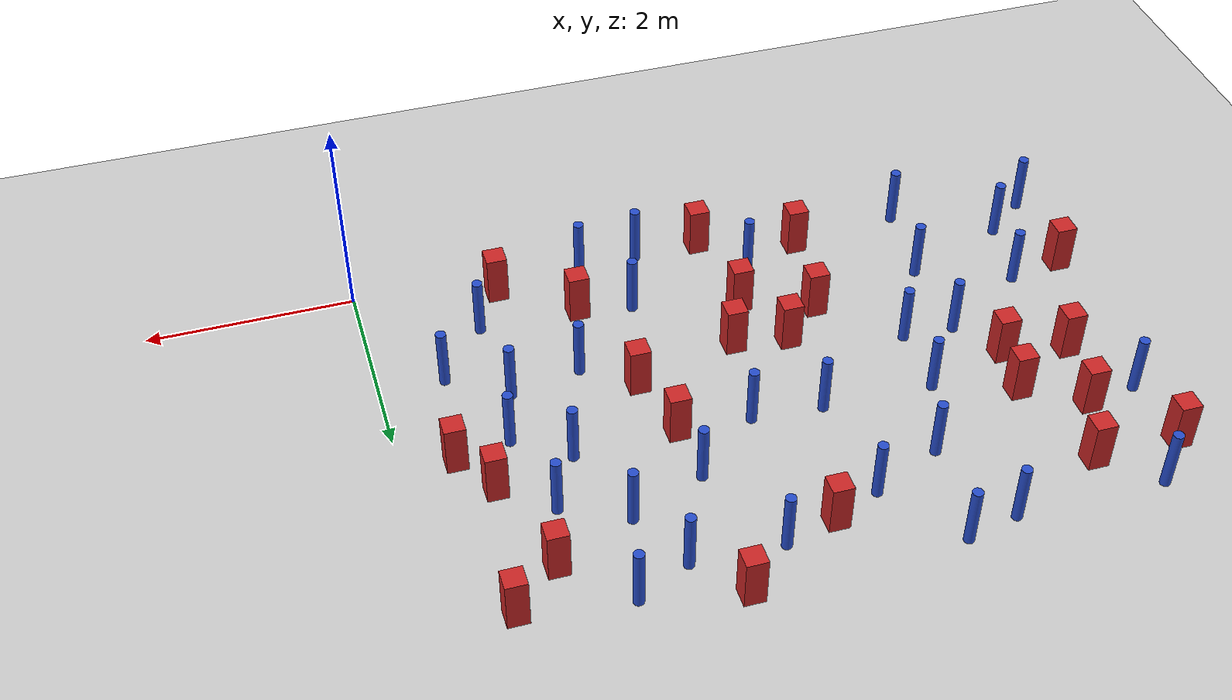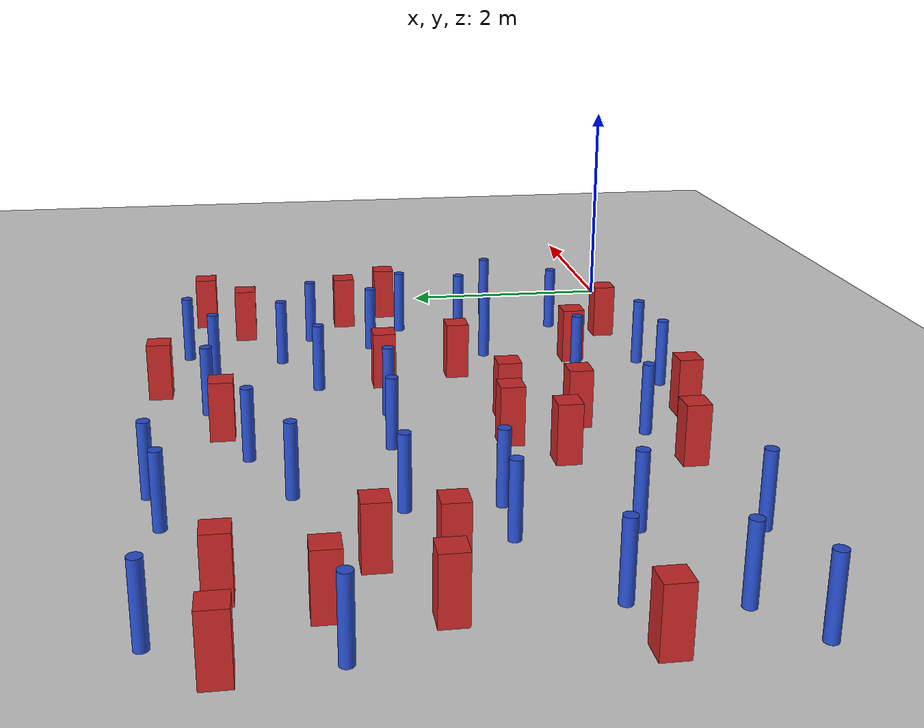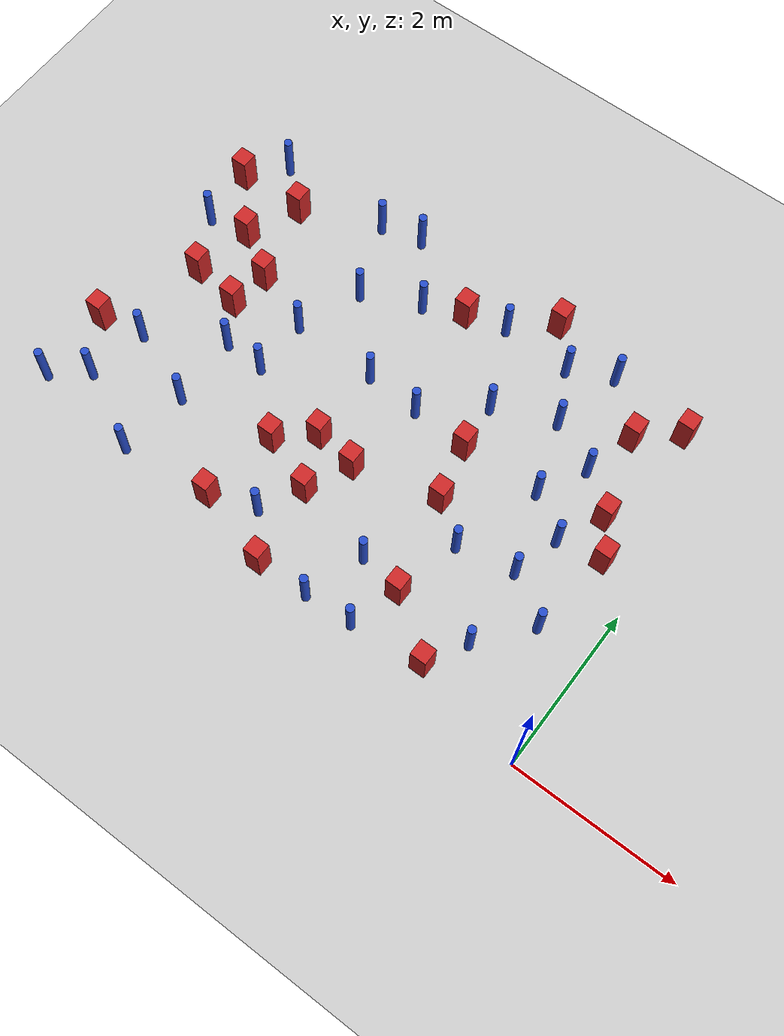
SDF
<sdf version="1.6">
 <world name="default">
  <model name="ground_plane">
   <static>1</static>
   <link name="link">
    <collision name="collision">
     <geometry><plane><normal>0 0 1</normal><size>100 100</size></plane></geometry>
     <surface><friction><ode><mu>100</mu><mu2>50</mu2></ode></friction></surface>
    </collision>
    <visual name="visual">
     <cast_shadows>0</cast_shadows>
     <geometry><plane><normal>0 0 1</normal><size>100 100</size></plane></geometry>
     <material>
      <ambient>1.0 1.0 1.0 1.0</ambient>
      <diffuse>0.8 0.8 0.8 1.0</diffuse>
      <specular>0.01 0.01 0.01 1.000000</specular>
     </material>
    </visual>
   </link>
  </model>
  <model name="pole_obstacle7">
   <static>true</static>
   <pose>-6.87891514637 0.468989120806 2.88873142074e-08 -9.90536689483e-09 4.60219948998e-07 -1.20965994956e-07</pose>
   <link name="link">
    <pose>0 0 0.3 0 -0 0</pose>
    <inertial>
     <mass>1</mass>
     <inertia><ixx>0.145833</ixx><ixy>0</ixy><ixz>0</ixz><iyy>0.145833</iyy><iyz>0</iyz><izz>0.125</izz></inertia>
    </inertial>
    <collision name="collision">
     <geometry><cylinder><radius>0.05</radius><length>.6</length></cylinder></geometry>
    </collision>
    <visual name="visual">
     <geometry><cylinder><radius>0.05</radius><length>.6</length></cylinder></geometry>
     <material>
      <script><name>Gazebo/Blue</name><uri>file://media/materials/scripts/gazebo.material</uri></script>
     </material>
    </visual>
   </link>
  </model>
  <model name="square_post_obstacle17">
   <static>true</static>
   <pose>-3.48001019088 4.02182379612 8.22691968438e-08 7.22125133819e-06 -7.54495500217e-07 2.29674213826e-05</pose>
   <link name="link">
    <pose>0 0 0.25 0 -0 0</pose>
    <inertial>
     <mass>100</mass>
     <inertia>
      <ixx>0.166667</ixx>
      <ixy>0</ixy>
      <ixz>0</ixz>
      <iyy>0.166667</iyy>
      <iyz>0</iyz>
      <izz>0.166667</izz>
     </inertia>
    </inertial>
    <collision name="collision"><geometry><box><size>.2 .2 .5</size></box></geometry></collision>
    <visual name="visual">
     <geometry><box><size>.2 .2 .5</size></box></geometry>
     <material>
      <script><name>Gazebo/Red</name><uri>file://media/materials/scripts/gazebo.material</uri></script>
     </material>
    </visual>
   </link>
  </model>
  <model name="pole_obstacle18">
   <static>true</static>
   <pose>-1.86325711507 1.58406415004 2.88873142074e-08 -9.90536689672e-09 4.60219948993e-07 -1.20965994959e-07</pose>
   <link name="link">
    <pose>0 0 0.3 0 -0 0</pose>
    <inertial>
     <mass>1</mass>
     <inertia><ixx>0.145833</ixx><ixy>0</ixy><ixz>0</ixz><iyy>0.145833</iyy><iyz>0</iyz><izz>0.125</izz></inertia>
    </inertial>
    <collision name="collision">
     <geometry><cylinder><radius>0.05</radius><length>.6</length></cylinder></geometry>
    </collision>
    <visual name="visual">
     <geometry><cylinder><radius>0.05</radius><length>.6</length></cylinder></geometry>
     <material>
      <script><name>Gazebo/Blue</name><uri>file://media/materials/scripts/gazebo.material</uri></script>
     </material>
    </visual>
   </link>
  </model>
  <model name="pole_obstacle33">
   <static>true</static>
   <pose>-1.60469002589 4.37448494918 2.88873142074e-08 -9.90536689852e-09 4.60219948989e-07 -1.2096599496e-07</pose>
   <link name="link">
    <pose>0 0 0.3 0 -0 0</pose>
    <inertial>
     <mass>1</mass>
     <inertia><ixx>0.145833</ixx><ixy>0</ixy><ixz>0</ixz><iyy>0.145833</iyy><iyz>0</iyz><izz>0.125</izz></inertia>
    </inertial>
    <collision name="collision">
     <geometry><cylinder><radius>0.05</radius><length>.6</length></cylinder></geometry>
    </collision>
    <visual name="visual">
     <geometry><cylinder><radius>0.05</radius><length>.6</length></cylinder></geometry>
     <material>
      <script><name>Gazebo/Blue</name><uri>file://media/materials/scripts/gazebo.material</uri></script>
     </material>
    </visual>
   </link>
  </model>
  <model name="pole_obstacle34">
   <static>true</static>
   <pose>-2.54288883217 3.1969439549 2.88873142074e-08 -9.90536690232e-09 4.6021994898e-07 -1.20965994968e-07</pose>
   <link name="link">
    <pose>0 0 0.3 0 -0 0</pose>
    <inertial>
     <mass>1</mass>
     <inertia><ixx>0.145833</ixx><ixy>0</ixy><ixz>0</ixz><iyy>0.145833</iyy><iyz>0</iyz><izz>0.125</izz></inertia>
    </inertial>
    <collision name="collision">
     <geometry><cylinder><radius>0.05</radius><length>.6</length></cylinder></geometry>
    </collision>
    <visual name="visual">
     <geometry><cylinder><radius>0.05</radius><length>.6</length></cylinder></geometry>
     <material>
      <script><name>Gazebo/Blue</name><uri>file://media/materials/scripts/gazebo.material</uri></script>
     </material>
    </visual>
   </link>
  </model>
  <model name="pole_obstacle37">
   <static>true</static>
   <pose>-1.09954351451 0.76246457824 2.88873142074e-08 -9.90536689692e-09 4.60219948993e-07 -1.20965994958e-07</pose>
   <link name="link">
    <pose>0 0 0.3 0 -0 0</pose>
    <inertial>
     <mass>1</mass>
     <inertia><ixx>0.145833</ixx><ixy>0</ixy><ixz>0</ixz><iyy>0.145833</iyy><iyz>0</iyz><izz>0.125</izz></inertia>
    </inertial>
    <collision name="collision">
     <geometry><cylinder><radius>0.05</radius><length>.6</length></cylinder></geometry>
    </collision>
    <visual name="visual">
     <geometry><cylinder><radius>0.05</radius><length>.6</length></cylinder></geometry>
     <material>
      <script><name>Gazebo/Blue</name><uri>file://media/materials/scripts/gazebo.material</uri></script>
     </material>
    </visual>
   </link>
  </model>
  <model name="square_post_obstacle41">
   <static>true</static>
   <pose>-4.42755588617 0.425251060177 8.22691968438e-08 7.2212513382e-06 -7.54495500217e-07 2.29674213826e-05</pose>
   <link name="link">
    <pose>0 0 0.25 0 -0 0</pose>
    <inertial>
     <mass>100</mass>
     <inertia>
      <ixx>0.166667</ixx>
      <ixy>0</ixy>
      <ixz>0</ixz>
      <iyy>0.166667</iyy>
      <iyz>0</iyz>
      <izz>0.166667</izz>
     </inertia>
    </inertial>
    <collision name="collision"><geometry><box><size>.2 .2 .5</size></box></geometry></collision>
    <visual name="visual">
     <geometry><box><size>.2 .2 .5</size></box></geometry>
     <material>
      <script><name>Gazebo/Red</name><uri>file://media/materials/scripts/gazebo.material</uri></script>
     </material>
    </visual>
   </link>
  </model>
  <model name="square_post_obstacle45">
   <static>true</static>
   <pose>-2.3292405593 1.93314175684 8.22691968438e-08 7.2212513382e-06 -7.54495500217e-07 2.29674213826e-05</pose>
   <link name="link">
    <pose>0 0 0.25 0 -0 0</pose>
    <inertial>
     <mass>100</mass>
     <inertia>
      <ixx>0.166667</ixx>
      <ixy>0</ixy>
      <ixz>0</ixz>
      <iyy>0.166667</iyy>
      <iyz>0</iyz>
      <izz>0.166667</izz>
     </inertia>
    </inertial>
    <collision name="collision"><geometry><box><size>.2 .2 .5</size></box></geometry></collision>
    <visual name="visual">
     <geometry><box><size>.2 .2 .5</size></box></geometry>
     <material>
      <script><name>Gazebo/Red</name><uri>file://media/materials/scripts/gazebo.material</uri></script>
     </material>
    </visual>
   </link>
  </model>
  <model name="square_post_obstacle48">
   <static>true</static>
   <pose>-0.76025445014 2.84936493071 8.22691968438e-08 7.2212513382e-06 -7.54495500217e-07 2.29674213826e-05</pose>
   <link name="link">
    <pose>0 0 0.25 0 -0 0</pose>
    <inertial>
     <mass>100</mass>
     <inertia>
      <ixx>0.166667</ixx>
      <ixy>0</ixy>
      <ixz>0</ixz>
      <iyy>0.166667</iyy>
      <iyz>0</iyz>
      <izz>0.166667</izz>
     </inertia>
    </inertial>
    <collision name="collision"><geometry><box><size>.2 .2 .5</size></box></geometry></collision>
    <visual name="visual">
     <geometry><box><size>.2 .2 .5</size></box></geometry>
     <material>
      <script><name>Gazebo/Red</name><uri>file://media/materials/scripts/gazebo.material</uri></script>
     </material>
    </visual>
   </link>
  </model>
  <model name="pole_obstacle46">
   <static>true</static>
   <pose>-3.86575262702 0.615175832883 2.88873142074e-08 -9.90536690901e-09 4.60219948964e-07 -1.20965994979e-07</pose>
   <link name="link">
    <pose>0 0 0.3 0 -0 0</pose>
    <inertial>
     <mass>1</mass>
     <inertia><ixx>0.145833</ixx><ixy>0</ixy><ixz>0</ixz><iyy>0.145833</iyy><iyz>0</iyz><izz>0.125</izz></inertia>
    </inertial>
    <collision name="collision">
     <geometry><cylinder><radius>0.05</radius><length>.6</length></cylinder></geometry>
    </collision>
    <visual name="visual">
     <geometry><cylinder><radius>0.05</radius><length>.6</length></cylinder></geometry>
     <material>
      <script><name>Gazebo/Blue</name><uri>file://media/materials/scripts/gazebo.material</uri></script>
     </material>
    </visual>
   </link>
  </model>
  <model name="pole_obstacle47">
   <static>true</static>
   <pose>-3.19668900895 2.64612089134 2.88873142074e-08 -9.90536689597e-09 4.60219948995e-07 -1.20965994957e-07</pose>
   <link name="link">
    <pose>0 0 0.3 0 -0 0</pose>
    <inertial>
     <mass>1</mass>
     <inertia><ixx>0.145833</ixx><ixy>0</ixy><ixz>0</ixz><iyy>0.145833</iyy><iyz>0</iyz><izz>0.125</izz></inertia>
    </inertial>
    <collision name="collision">
     <geometry><cylinder><radius>0.05</radius><length>.6</length></cylinder></geometry>
    </collision>
    <visual name="visual">
     <geometry><cylinder><radius>0.05</radius><length>.6</length></cylinder></geometry>
     <material>
      <script><name>Gazebo/Blue</name><uri>file://media/materials/scripts/gazebo.material</uri></script>
     </material>
    </visual>
   </link>
  </model>
  <model name="square_post_obstacle53">
   <static>true</static>
   <pose>-0.59748888899 4.24093775849 8.22691968438e-08 7.2212513382e-06 -7.54495500217e-07 2.29674213826e-05</pose>
   <link name="link">
    <pose>0 0 0.25 0 -0 0</pose>
    <inertial>
     <mass>100</mass>
     <inertia>
      <ixx>0.166667</ixx>
      <ixy>0</ixy>
      <ixz>0</ixz>
      <iyy>0.166667</iyy>
      <iyz>0</iyz>
      <izz>0.166667</izz>
     </inertia>
    </inertial>
    <collision name="collision"><geometry><box><size>.2 .2 .5</size></box></geometry></collision>
    <visual name="visual">
     <geometry><box><size>.2 .2 .5</size></box></geometry>
     <material>
      <script><name>Gazebo/Red</name><uri>file://media/materials/scripts/gazebo.material</uri></script>
     </material>
    </visual>
   </link>
  </model>
  <model name="pole_obstacle51">
   <static>true</static>
   <pose>-1.51758317811 2.64322169742 2.88873142074e-08 -9.90536689791e-09 4.6021994899e-07 -1.20965994959e-07</pose>
   <link name="link">
    <pose>0 0 0.3 0 -0 0</pose>
    <inertial>
     <mass>1</mass>
     <inertia><ixx>0.145833</ixx><ixy>0</ixy><ixz>0</ixz><iyy>0.145833</iyy><iyz>0</iyz><izz>0.125</izz></inertia>
    </inertial>
    <collision name="collision">
     <geometry><cylinder><radius>0.05</radius><length>.6</length></cylinder></geometry>
    </collision>
    <visual name="visual">
     <geometry><cylinder><radius>0.05</radius><length>.6</length></cylinder></geometry>
     <material>
      <script><name>Gazebo/Blue</name><uri>file://media/materials/scripts/gazebo.material</uri></script>
     </material>
    </visual>
   </link>
  </model>
  <model name="pole_obstacle59">
   <static>true</static>
   <pose>-3.87720584534 2.69231594019 2.88873142074e-08 -9.90536689597e-09 4.60219948995e-07 -1.20965994957e-07</pose>
   <link name="link">
    <pose>0 0 0.3 0 -0 0</pose>
    <inertial>
     <mass>1</mass>
     <inertia><ixx>0.145833</ixx><ixy>0</ixy><ixz>0</ixz><iyy>0.145833</iyy><iyz>0</iyz><izz>0.125</izz></inertia>
    </inertial>
    <collision name="collision">
     <geometry><cylinder><radius>0.05</radius><length>.6</length></cylinder></geometry>
    </collision>
    <visual name="visual">
     <geometry><cylinder><radius>0.05</radius><length>.6</length></cylinder></geometry>
     <material>
      <script><name>Gazebo/Blue</name><uri>file://media/materials/scripts/gazebo.material</uri></script>
     </material>
    </visual>
   </link>
  </model>
  <model name="pole_obstacle67">
   <static>true</static>
   <pose>-4.49475943039 4.53554389528 2.88873142074e-08 -9.90536690842e-09 4.60219948965e-07 -1.20965994976e-07</pose>
   <link name="link">
    <pose>0 0 0.3 0 -0 0</pose>
    <inertial>
     <mass>1</mass>
     <inertia><ixx>0.145833</ixx><ixy>0</ixy><ixz>0</ixz><iyy>0.145833</iyy><iyz>0</iyz><izz>0.125</izz></inertia>
    </inertial>
    <collision name="collision">
     <geometry><cylinder><radius>0.05</radius><length>.6</length></cylinder></geometry>
    </collision>
    <visual name="visual">
     <geometry><cylinder><radius>0.05</radius><length>.6</length></cylinder></geometry>
     <material>
      <script><name>Gazebo/Blue</name><uri>file://media/materials/scripts/gazebo.material</uri></script>
     </material>
    </visual>
   </link>
  </model>
  <model name="pole_obstacle79">
   <static>true</static>
   <pose>-4.94413660858 2.72137446118 2.88873142074e-08 -9.90536690245e-09 4.6021994898e-07 -1.20965994966e-07</pose>
   <link name="link">
    <pose>0 0 0.3 0 -0 0</pose>
    <inertial>
     <mass>1</mass>
     <inertia><ixx>0.145833</ixx><ixy>0</ixy><ixz>0</ixz><iyy>0.145833</iyy><iyz>0</iyz><izz>0.125</izz></inertia>
    </inertial>
    <collision name="collision">
     <geometry><cylinder><radius>0.05</radius><length>.6</length></cylinder></geometry>
    </collision>
    <visual name="visual">
     <geometry><cylinder><radius>0.05</radius><length>.6</length></cylinder></geometry>
     <material>
      <script><name>Gazebo/Blue</name><uri>file://media/materials/scripts/gazebo.material</uri></script>
     </material>
    </visual>
   </link>
  </model>
  <model name="pole_obstacle96">
   <static>true</static>
   <pose>-2.83037209132 0.151644809336 2.88873142074e-08 -9.90536689314e-09 4.60219949002e-07 -1.20965994953e-07</pose>
   <link name="link">
    <pose>0 0 0.3 0 -0 0</pose>
    <inertial>
     <mass>1</mass>
     <inertia><ixx>0.145833</ixx><ixy>0</ixy><ixz>0</ixz><iyy>0.145833</iyy><iyz>0</iyz><izz>0.125</izz></inertia>
    </inertial>
    <collision name="collision">
     <geometry><cylinder><radius>0.05</radius><length>.6</length></cylinder></geometry>
    </collision>
    <visual name="visual">
     <geometry><cylinder><radius>0.05</radius><length>.6</length></cylinder></geometry>
     <material>
      <script><name>Gazebo/Blue</name><uri>file://media/materials/scripts/gazebo.material</uri></script>
     </material>
    </visual>
   </link>
  </model>
  <model name="pole_obstacle100">
   <static>true</static>
   <pose>-6.46769032376 0.794480643089 2.88873142074e-08 -9.90536689837e-09 4.60219948989e-07 -1.2096599496e-07</pose>
   <link name="link">
    <pose>0 0 0.3 0 -0 0</pose>
    <inertial>
     <mass>1</mass>
     <inertia><ixx>0.145833</ixx><ixy>0</ixy><ixz>0</ixz><iyy>0.145833</iyy><iyz>0</iyz><izz>0.125</izz></inertia>
    </inertial>
    <collision name="collision">
     <geometry><cylinder><radius>0.05</radius><length>.6</length></cylinder></geometry>
    </collision>
    <visual name="visual">
     <geometry><cylinder><radius>0.05</radius><length>.6</length></cylinder></geometry>
     <material>
      <script><name>Gazebo/Blue</name><uri>file://media/materials/scripts/gazebo.material</uri></script>
     </material>
    </visual>
   </link>
  </model>
  <model name="square_post_obstacle92">
   <static>true</static>
   <pose>-6.22331638182 3.3459680723 8.22691968438e-08 7.2212513382e-06 -7.54495500217e-07 2.29674213826e-05</pose>
   <link name="link">
    <pose>0 0 0.25 0 -0 0</pose>
    <inertial>
     <mass>100</mass>
     <inertia>
      <ixx>0.166667</ixx>
      <ixy>0</ixy>
      <ixz>0</ixz>
      <iyy>0.166667</iyy>
      <iyz>0</iyz>
      <izz>0.166667</izz>
     </inertia>
    </inertial>
    <collision name="collision"><geometry><box><size>.2 .2 .5</size></box></geometry></collision>
    <visual name="visual">
     <geometry><box><size>.2 .2 .5</size></box></geometry>
     <material>
      <script><name>Gazebo/Red</name><uri>file://media/materials/scripts/gazebo.material</uri></script>
     </material>
    </visual>
   </link>
  </model>
  <model name="pole_obstacle109">
   <static>true</static>
   <pose>-5.45994869018 2.03650640585 2.88873142074e-08 -9.90536689683e-09 4.60219948993e-07 -1.20965994957e-07</pose>
   <link name="link">
    <pose>0 0 0.3 0 -0 0</pose>
    <inertial>
     <mass>1</mass>
     <inertia><ixx>0.145833</ixx><ixy>0</ixy><ixz>0</ixz><iyy>0.145833</iyy><iyz>0</iyz><izz>0.125</izz></inertia>
    </inertial>
    <collision name="collision">
     <geometry><cylinder><radius>0.05</radius><length>.6</length></cylinder></geometry>
    </collision>
    <visual name="visual">
     <geometry><cylinder><radius>0.05</radius><length>.6</length></cylinder></geometry>
     <material>
      <script><name>Gazebo/Blue</name><uri>file://media/materials/scripts/gazebo.material</uri></script>
     </material>
    </visual>
   </link>
  </model>
  <model name="square_post_obstacle99">
   <static>true</static>
   <pose>-2.06198983256 0.784341106685 8.22691968438e-08 7.2212513382e-06 -7.54495500217e-07 2.29674213826e-05</pose>
   <link name="link">
    <pose>0 0 0.25 0 -0 0</pose>
    <inertial>
     <mass>100</mass>
     <inertia>
      <ixx>0.166667</ixx>
      <ixy>0</ixy>
      <ixz>0</ixz>
      <iyy>0.166667</iyy>
      <iyz>0</iyz>
      <izz>0.166667</izz>
     </inertia>
    </inertial>
    <collision name="collision"><geometry><box><size>.2 .2 .5</size></box></geometry></collision>
    <visual name="visual">
     <geometry><box><size>.2 .2 .5</size></box></geometry>
     <material>
      <script><name>Gazebo/Red</name><uri>file://media/materials/scripts/gazebo.material</uri></script>
     </material>
    </visual>
   </link>
  </model>
  <model name="pole_obstacle113">
   <static>true</static>
   <pose>-1.81401439702 3.50429759369 2.88873142074e-08 -9.90536689791e-09 4.6021994899e-07 -1.20965994959e-07</pose>
   <link name="link">
    <pose>0 0 0.3 0 -0 0</pose>
    <inertial>
     <mass>1</mass>
     <inertia><ixx>0.145833</ixx><ixy>0</ixy><ixz>0</ixz><iyy>0.145833</iyy><iyz>0</iyz><izz>0.125</izz></inertia>
    </inertial>
    <collision name="collision">
     <geometry><cylinder><radius>0.05</radius><length>.6</length></cylinder></geometry>
    </collision>
    <visual name="visual">
     <geometry><cylinder><radius>0.05</radius><length>.6</length></cylinder></geometry>
     <material>
      <script><name>Gazebo/Blue</name><uri>file://media/materials/scripts/gazebo.material</uri></script>
     </material>
    </visual>
   </link>
  </model>
  <model name="square_post_obstacle103">
   <static>true</static>
   <pose>-1.37432509559 0.291449256372 8.22691968438e-08 7.22125133819e-06 -7.54495500217e-07 2.29674213826e-05</pose>
   <link name="link">
    <pose>0 0 0.25 0 -0 0</pose>
    <inertial>
     <mass>100</mass>
     <inertia>
      <ixx>0.166667</ixx>
      <ixy>0</ixy>
      <ixz>0</ixz>
      <iyy>0.166667</iyy>
      <iyz>0</iyz>
      <izz>0.166667</izz>
     </inertia>
    </inertial>
    <collision name="collision"><geometry><box><size>.2 .2 .5</size></box></geometry></collision>
    <visual name="visual">
     <geometry><box><size>.2 .2 .5</size></box></geometry>
     <material>
      <script><name>Gazebo/Red</name><uri>file://media/materials/scripts/gazebo.material</uri></script>
     </material>
    </visual>
   </link>
  </model>
  <model name="square_post_obstacle112">
   <static>true</static>
   <pose>-3.3585120181 1.6616357976 8.22691968438e-08 7.2212513382e-06 -7.54495500217e-07 2.29674213826e-05</pose>
   <link name="link">
    <pose>0 0 0.25 0 -0 0</pose>
    <inertial>
     <mass>100</mass>
     <inertia>
      <ixx>0.166667</ixx>
      <ixy>0</ixy>
      <ixz>0</ixz>
      <iyy>0.166667</iyy>
      <iyz>0</iyz>
      <izz>0.166667</izz>
     </inertia>
    </inertial>
    <collision name="collision"><geometry><box><size>.2 .2 .5</size></box></geometry></collision>
    <visual name="visual">
     <geometry><box><size>.2 .2 .5</size></box></geometry>
     <material>
      <script><name>Gazebo/Red</name><uri>file://media/materials/scripts/gazebo.material</uri></script>
     </material>
    </visual>
   </link>
  </model>
  <model name="pole_obstacle127">
   <static>true</static>
   <pose>-4.63939595051 3.49998136539 2.88873142074e-08 -9.90536690245e-09 4.6021994898e-07 -1.20965994966e-07</pose>
   <link name="link">
    <pose>0 0 0.3 0 -0 0</pose>
    <inertial>
     <mass>1</mass>
     <inertia><ixx>0.145833</ixx><ixy>0</ixy><ixz>0</ixz><iyy>0.145833</iyy><iyz>0</iyz><izz>0.125</izz></inertia>
    </inertial>
    <collision name="collision">
     <geometry><cylinder><radius>0.05</radius><length>.6</length></cylinder></geometry>
    </collision>
    <visual name="visual">
     <geometry><cylinder><radius>0.05</radius><length>.6</length></cylinder></geometry>
     <material>
      <script><name>Gazebo/Blue</name><uri>file://media/materials/scripts/gazebo.material</uri></script>
     </material>
    </visual>
   </link>
  </model>
  <model name="pole_obstacle137">
   <static>true</static>
   <pose>-2.98501468799 4.15358794354 2.88873142074e-08 -9.90536689859e-09 4.60219948989e-07 -1.20965994961e-07</pose>
   <link name="link">
    <pose>0 0 0.3 0 -0 0</pose>
    <inertial>
     <mass>1</mass>
     <inertia><ixx>0.145833</ixx><ixy>0</ixy><ixz>0</ixz><iyy>0.145833</iyy><iyz>0</iyz><izz>0.125</izz></inertia>
    </inertial>
    <collision name="collision">
     <geometry><cylinder><radius>0.05</radius><length>.6</length></cylinder></geometry>
    </collision>
    <visual name="visual">
     <geometry><cylinder><radius>0.05</radius><length>.6</length></cylinder></geometry>
     <material>
      <script><name>Gazebo/Blue</name><uri>file://media/materials/scripts/gazebo.material</uri></script>
     </material>
    </visual>
   </link>
  </model>
  <model name="square_post_obstacle124">
   <static>true</static>
   <pose>-6.3651759394 2.61168579341 8.22691968438e-08 7.2212513382e-06 -7.54495500217e-07 2.29674213826e-05</pose>
   <link name="link">
    <pose>0 0 0.25 0 -0 0</pose>
    <inertial>
     <mass>100</mass>
     <inertia>
      <ixx>0.166667</ixx>
      <ixy>0</ixy>
      <ixz>0</ixz>
      <iyy>0.166667</iyy>
      <iyz>0</iyz>
      <izz>0.166667</izz>
     </inertia>
    </inertial>
    <collision name="collision"><geometry><box><size>.2 .2 .5</size></box></geometry></collision>
    <visual name="visual">
     <geometry><box><size>.2 .2 .5</size></box></geometry>
     <material>
      <script><name>Gazebo/Red</name><uri>file://media/materials/scripts/gazebo.material</uri></script>
     </material>
    </visual>
   </link>
  </model>
  <model name="square_post_obstacle127">
   <static>true</static>
   <pose>-3.88136101379 1.74502235189 8.22691968438e-08 7.2212513382e-06 -7.54495500217e-07 2.29674213826e-05</pose>
   <link name="link">
    <pose>0 0 0.25 0 -0 0</pose>
    <inertial>
     <mass>100</mass>
     <inertia>
      <ixx>0.166667</ixx>
      <ixy>0</ixy>
      <ixz>0</ixz>
      <iyy>0.166667</iyy>
      <iyz>0</iyz>
      <izz>0.166667</izz>
     </inertia>
    </inertial>
    <collision name="collision"><geometry><box><size>.2 .2 .5</size></box></geometry></collision>
    <visual name="visual">
     <geometry><box><size>.2 .2 .5</size></box></geometry>
     <material>
      <script><name>Gazebo/Red</name><uri>file://media/materials/scripts/gazebo.material</uri></script>
     </material>
    </visual>
   </link>
  </model>
  <model name="pole_obstacle142">
   <static>true</static>
   <pose>-0.623662029821 1.36064106724 2.88873142074e-08 -9.90536689855e-09 4.60219948989e-07 -1.20965994962e-07</pose>
   <link name="link">
    <pose>0 0 0.3 0 -0 0</pose>
    <inertial>
     <mass>1</mass>
     <inertia><ixx>0.145833</ixx><ixy>0</ixy><ixz>0</ixz><iyy>0.145833</iyy><iyz>0</iyz><izz>0.125</izz></inertia>
    </inertial>
    <collision name="collision">
     <geometry><cylinder><radius>0.05</radius><length>.6</length></cylinder></geometry>
    </collision>
    <visual name="visual">
     <geometry><cylinder><radius>0.05</radius><length>.6</length></cylinder></geometry>
     <material>
      <script><name>Gazebo/Blue</name><uri>file://media/materials/scripts/gazebo.material</uri></script>
     </material>
    </visual>
   </link>
  </model>
  <model name="pole_obstacle148">
   <static>true</static>
   <pose>-2.24395691298 0.18627187099 2.88873142074e-08 -9.90536689209e-09 4.60219949004e-07 -1.20965994952e-07</pose>
   <link name="link">
    <pose>0 0 0.3 0 -0 0</pose>
    <inertial>
     <mass>1</mass>
     <inertia><ixx>0.145833</ixx><ixy>0</ixy><ixz>0</ixz><iyy>0.145833</iyy><iyz>0</iyz><izz>0.125</izz></inertia>
    </inertial>
    <collision name="collision">
     <geometry><cylinder><radius>0.05</radius><length>.6</length></cylinder></geometry>
    </collision>
    <visual name="visual">
     <geometry><cylinder><radius>0.05</radius><length>.6</length></cylinder></geometry>
     <material>
      <script><name>Gazebo/Blue</name><uri>file://media/materials/scripts/gazebo.material</uri></script>
     </material>
    </visual>
   </link>
  </model>
  <model name="square_post_obstacle137">
   <static>true</static>
   <pose>-4.28153225228 1.38378155328 8.22691968438e-08 7.2212513382e-06 -7.54495500217e-07 2.29674213826e-05</pose>
   <link name="link">
    <pose>0 0 0.25 0 -0 0</pose>
    <inertial>
     <mass>100</mass>
     <inertia>
      <ixx>0.166667</ixx>
      <ixy>0</ixy>
      <ixz>0</ixz>
      <iyy>0.166667</iyy>
      <iyz>0</iyz>
      <izz>0.166667</izz>
     </inertia>
    </inertial>
    <collision name="collision"><geometry><box><size>.2 .2 .5</size></box></geometry></collision>
    <visual name="visual">
     <geometry><box><size>.2 .2 .5</size></box></geometry>
     <material>
      <script><name>Gazebo/Red</name><uri>file://media/materials/scripts/gazebo.material</uri></script>
     </material>
    </visual>
   </link>
  </model>
  <model name="square_post_obstacle138">
   <static>true</static>
   <pose>-0.497539895993 2.41606536747 8.22691968438e-08 7.2212513382e-06 -7.54495500217e-07 2.29674213826e-05</pose>
   <link name="link">
    <pose>0 0 0.25 0 -0 0</pose>
    <inertial>
     <mass>100</mass>
     <inertia>
      <ixx>0.166667</ixx>
      <ixy>0</ixy>
      <ixz>0</ixz>
      <iyy>0.166667</iyy>
      <iyz>0</iyz>
      <izz>0.166667</izz>
     </inertia>
    </inertial>
    <collision name="collision"><geometry><box><size>.2 .2 .5</size></box></geometry></collision>
    <visual name="visual">
     <geometry><box><size>.2 .2 .5</size></box></geometry>
     <material>
      <script><name>Gazebo/Red</name><uri>file://media/materials/scripts/gazebo.material</uri></script>
     </material>
    </visual>
   </link>
  </model>
  <model name="square_post_obstacle140">
   <static>true</static>
   <pose>-5.68146453484 3.00118193066 8.22691968438e-08 7.2212513382e-06 -7.54495500217e-07 2.29674213826e-05</pose>
   <link name="link">
    <pose>0 0 0.25 0 -0 0</pose>
    <inertial>
     <mass>100</mass>
     <inertia>
      <ixx>0.166667</ixx>
      <ixy>0</ixy>
      <ixz>0</ixz>
      <iyy>0.166667</iyy>
      <iyz>0</iyz>
      <izz>0.166667</izz>
     </inertia>
    </inertial>
    <collision name="collision"><geometry><box><size>.2 .2 .5</size></box></geometry></collision>
    <visual name="visual">
     <geometry><box><size>.2 .2 .5</size></box></geometry>
     <material>
      <script><name>Gazebo/Red</name><uri>file://media/materials/scripts/gazebo.material</uri></script>
     </material>
    </visual>
   </link>
  </model>
  <model name="square_post_obstacle150">
   <static>true</static>
   <pose>-2.49573122469 2.61455028491 8.22691968438e-08 7.2212513382e-06 -7.54495500217e-07 2.29674213826e-05</pose>
   <link name="link">
    <pose>0 0 0.25 0 -0 0</pose>
    <inertial>
     <mass>100</mass>
     <inertia>
      <ixx>0.166667</ixx>
      <ixy>0</ixy>
      <ixz>0</ixz>
      <iyy>0.166667</iyy>
      <iyz>0</iyz>
      <izz>0.166667</izz>
     </inertia>
    </inertial>
    <collision name="collision"><geometry><box><size>.2 .2 .5</size></box></geometry></collision>
    <visual name="visual">
     <geometry><box><size>.2 .2 .5</size></box></geometry>
     <material>
      <script><name>Gazebo/Red</name><uri>file://media/materials/scripts/gazebo.material</uri></script>
     </material>
    </visual>
   </link>
  </model>
  <model name="pole_obstacle158">
   <static>true</static>
   <pose>-1.22019224946 3.20839405339 2.88873142074e-08 -9.90536689791e-09 4.6021994899e-07 -1.20965994959e-07</pose>
   <link name="link">
    <pose>0 0 0.3 0 -0 0</pose>
    <inertial>
     <mass>1</mass>
     <inertia><ixx>0.145833</ixx><ixy>0</ixy><ixz>0</ixz><iyy>0.145833</iyy><iyz>0</iyz><izz>0.125</izz></inertia>
    </inertial>
    <collision name="collision">
     <geometry><cylinder><radius>0.05</radius><length>.6</length></cylinder></geometry>
    </collision>
    <visual name="visual">
     <geometry><cylinder><radius>0.05</radius><length>.6</length></cylinder></geometry>
     <material>
      <script><name>Gazebo/Blue</name><uri>file://media/materials/scripts/gazebo.material</uri></script>
     </material>
    </visual>
   </link>
  </model>
  <model name="pole_obstacle165">
   <static>true</static>
   <pose>-2.12249119777 4.12237480363 2.88873142074e-08 -9.90536689859e-09 4.60219948989e-07 -1.20965994961e-07</pose>
   <link name="link">
    <pose>0 0 0.3 0 -0 0</pose>
    <inertial>
     <mass>1</mass>
     <inertia><ixx>0.145833</ixx><ixy>0</ixy><ixz>0</ixz><iyy>0.145833</iyy><iyz>0</iyz><izz>0.125</izz></inertia>
    </inertial>
    <collision name="collision">
     <geometry><cylinder><radius>0.05</radius><length>.6</length></cylinder></geometry>
    </collision>
    <visual name="visual">
     <geometry><cylinder><radius>0.05</radius><length>.6</length></cylinder></geometry>
     <material>
      <script><name>Gazebo/Blue</name><uri>file://media/materials/scripts/gazebo.material</uri></script>
     </material>
    </visual>
   </link>
  </model>
  <model name="square_post_obstacle161">
   <static>true</static>
   <pose>-3.60506771669 1.11968436048 8.22691968438e-08 7.2212513382e-06 -7.54495500217e-07 2.29674213826e-05</pose>
   <link name="link">
    <pose>0 0 0.25 0 -0 0</pose>
    <inertial>
     <mass>100</mass>
     <inertia>
      <ixx>0.166667</ixx>
      <ixy>0</ixy>
      <ixz>0</ixz>
      <iyy>0.166667</iyy>
      <iyz>0</iyz>
      <izz>0.166667</izz>
     </inertia>
    </inertial>
    <collision name="collision"><geometry><box><size>.2 .2 .5</size></box></geometry></collision>
    <visual name="visual">
     <geometry><box><size>.2 .2 .5</size></box></geometry>
     <material>
      <script><name>Gazebo/Red</name><uri>file://media/materials/scripts/gazebo.material</uri></script>
     </material>
    </visual>
   </link>
  </model>
  <model name="pole_obstacle172">
   <static>true</static>
   <pose>-5.44013622281 1.16555940778 2.88873142074e-08 -9.90536689445e-09 4.60219948999e-07 -1.20965994956e-07</pose>
   <link name="link">
    <pose>0 0 0.3 0 -0 0</pose>
    <inertial>
     <mass>1</mass>
     <inertia><ixx>0.145833</ixx><ixy>0</ixy><ixz>0</ixz><iyy>0.145833</iyy><iyz>0</iyz><izz>0.125</izz></inertia>
    </inertial>
    <collision name="collision">
     <geometry><cylinder><radius>0.05</radius><length>.6</length></cylinder></geometry>
    </collision>
    <visual name="visual">
     <geometry><cylinder><radius>0.05</radius><length>.6</length></cylinder></geometry>
     <material>
      <script><name>Gazebo/Blue</name><uri>file://media/materials/scripts/gazebo.material</uri></script>
     </material>
    </visual>
   </link>
  </model>
  <model name="square_post_obstacle164">
   <static>true</static>
   <pose>-5.75002066768 2.4982153185 8.22691968438e-08 7.2212513382e-06 -7.54495500217e-07 2.29674213826e-05</pose>
   <link name="link">
    <pose>0 0 0.25 0 -0 0</pose>
    <inertial>
     <mass>100</mass>
     <inertia>
      <ixx>0.166667</ixx>
      <ixy>0</ixy>
      <ixz>0</ixz>
      <iyy>0.166667</iyy>
      <iyz>0</iyz>
      <izz>0.166667</izz>
     </inertia>
    </inertial>
    <collision name="collision"><geometry><box><size>.2 .2 .5</size></box></geometry></collision>
    <visual name="visual">
     <geometry><box><size>.2 .2 .5</size></box></geometry>
     <material>
      <script><name>Gazebo/Red</name><uri>file://media/materials/scripts/gazebo.material</uri></script>
     </material>
    </visual>
   </link>
  </model>
  <model name="pole_obstacle185">
   <static>true</static>
   <pose>-2.59083886765 0.870077956565 2.88873142074e-08 -9.90536689285e-09 4.60219949002e-07 -1.20965994953e-07</pose>
   <link name="link">
    <pose>0 0 0.3 0 -0 0</pose>
    <inertial>
     <mass>1</mass>
     <inertia><ixx>0.145833</ixx><ixy>0</ixy><ixz>0</ixz><iyy>0.145833</iyy><iyz>0</iyz><izz>0.125</izz></inertia>
    </inertial>
    <collision name="collision">
     <geometry><cylinder><radius>0.05</radius><length>.6</length></cylinder></geometry>
    </collision>
    <visual name="visual">
     <geometry><cylinder><radius>0.05</radius><length>.6</length></cylinder></geometry>
     <material>
      <script><name>Gazebo/Blue</name><uri>file://media/materials/scripts/gazebo.material</uri></script>
     </material>
    </visual>
   </link>
  </model>
  <model name="square_post_obstacle178">
   <static>true</static>
   <pose>-3.47956626284 0.147813983317 8.22691968438e-08 7.2212513382e-06 -7.54495500217e-07 2.29674213826e-05</pose>
   <link name="link">
    <pose>0 0 0.25 0 -0 0</pose>
    <inertial>
     <mass>100</mass>
     <inertia>
      <ixx>0.166667</ixx>
      <ixy>0</ixy>
      <ixz>0</ixz>
      <iyy>0.166667</iyy>
      <iyz>0</iyz>
      <izz>0.166667</izz>
     </inertia>
    </inertial>
    <collision name="collision"><geometry><box><size>.2 .2 .5</size></box></geometry></collision>
    <visual name="visual">
     <geometry><box><size>.2 .2 .5</size></box></geometry>
     <material>
      <script><name>Gazebo/Red</name><uri>file://media/materials/scripts/gazebo.material</uri></script>
     </material>
    </visual>
   </link>
  </model>
  <model name="square_post_obstacle179">
   <static>true</static>
   <pose>-1.04844230903 3.84387608331 8.22691968438e-08 7.22125133819e-06 -7.54495500217e-07 2.29674213826e-05</pose>
   <link name="link">
    <pose>0 0 0.25 0 -0 0</pose>
    <inertial>
     <mass>100</mass>
     <inertia>
      <ixx>0.166667</ixx>
      <ixy>0</ixy>
      <ixz>0</ixz>
      <iyy>0.166667</iyy>
      <iyz>0</iyz>
      <izz>0.166667</izz>
     </inertia>
    </inertial>
    <collision name="collision"><geometry><box><size>.2 .2 .5</size></box></geometry></collision>
    <visual name="visual">
     <geometry><box><size>.2 .2 .5</size></box></geometry>
     <material>
      <script><name>Gazebo/Red</name><uri>file://media/materials/scripts/gazebo.material</uri></script>
     </material>
    </visual>
   </link>
  </model>
  <model name="square_post_obstacle188">
   <static>true</static>
   <pose>-5.948340798 3.9951934579 8.22691968438e-08 7.2212513382e-06 -7.54495500217e-07 2.29674213826e-05</pose>
   <link name="link">
    <pose>0 0 0.25 0 -0 0</pose>
    <inertial>
     <mass>100</mass>
     <inertia>
      <ixx>0.166667</ixx>
      <ixy>0</ixy>
      <ixz>0</ixz>
      <iyy>0.166667</iyy>
      <iyz>0</iyz>
      <izz>0.166667</izz>
     </inertia>
    </inertial>
    <collision name="collision"><geometry><box><size>.2 .2 .5</size></box></geometry></collision>
    <visual name="visual">
     <geometry><box><size>.2 .2 .5</size></box></geometry>
     <material>
      <script><name>Gazebo/Red</name><uri>file://media/materials/scripts/gazebo.material</uri></script>
     </material>
    </visual>
   </link>
  </model>
  <model name="square_post_obstacle191">
   <static>true</static>
   <pose>-2.51610825365 4.57562230533 8.22691968438e-08 7.2212513382e-06 -7.54495500217e-07 2.29674213826e-05</pose>
   <link name="link">
    <pose>0 0 0.25 0 -0 0</pose>
    <inertial>
     <mass>100</mass>
     <inertia>
      <ixx>0.166667</ixx>
      <ixy>0</ixy>
      <ixz>0</ixz>
      <iyy>0.166667</iyy>
      <iyz>0</iyz>
      <izz>0.166667</izz>
     </inertia>
    </inertial>
    <collision name="collision"><geometry><box><size>.2 .2 .5</size></box></geometry></collision>
    <visual name="visual">
     <geometry><box><size>.2 .2 .5</size></box></geometry>
     <material>
      <script><name>Gazebo/Red</name><uri>file://media/materials/scripts/gazebo.material</uri></script>
     </material>
    </visual>
   </link>
  </model>
  <model name="square_post_obstacle202">
   <static>true</static>
   <pose>-6.85759824248 1.42930204119 8.22691968438e-08 7.2212513382e-06 -7.54495500217e-07 2.29674213826e-05</pose>
   <link name="link">
    <pose>0 0 0.25 0 -0 0</pose>
    <inertial>
     <mass>100</mass>
     <inertia>
      <ixx>0.166667</ixx>
      <ixy>0</ixy>
      <ixz>0</ixz>
      <iyy>0.166667</iyy>
      <iyz>0</iyz>
      <izz>0.166667</izz>
     </inertia>
    </inertial>
    <collision name="collision"><geometry><box><size>.2 .2 .5</size></box></geometry></collision>
    <visual name="visual">
     <geometry><box><size>.2 .2 .5</size></box></geometry>
     <material>
      <script><name>Gazebo/Red</name><uri>file://media/materials/scripts/gazebo.material</uri></script>
     </material>
    </visual>
   </link>
  </model>
  <model name="pole_obstacle188">
   <static>true</static>
   <pose>-6.32909190299 1.52686595347 2.88873142074e-08 -9.90536689445e-09 4.60219948999e-07 -1.20965994956e-07</pose>
   <link name="link">
    <pose>0 0 0.3 0 -0 0</pose>
    <inertial>
     <mass>1</mass>
     <inertia><ixx>0.145833</ixx><ixy>0</ixy><ixz>0</ixz><iyy>0.145833</iyy><iyz>0</iyz><izz>0.125</izz></inertia>
    </inertial>
    <collision name="collision">
     <geometry><cylinder><radius>0.05</radius><length>.6</length></cylinder></geometry>
    </collision>
    <visual name="visual">
     <geometry><cylinder><radius>0.05</radius><length>.6</length></cylinder></geometry>
     <material>
      <script><name>Gazebo/Blue</name><uri>file://media/materials/scripts/gazebo.material</uri></script>
     </material>
    </visual>
   </link>
  </model>
  <model name="pole_obstacle191">
   <static>true</static>
   <pose>-6.42523575684 4.41888115614 2.88873142074e-08 -9.90536690842e-09 4.60219948965e-07 -1.20965994976e-07</pose>
   <link name="link">
    <pose>0 0 0.3 0 -0 0</pose>
    <inertial>
     <mass>1</mass>
     <inertia><ixx>0.145833</ixx><ixy>0</ixy><ixz>0</ixz><iyy>0.145833</iyy><iyz>0</iyz><izz>0.125</izz></inertia>
    </inertial>
    <collision name="collision">
     <geometry><cylinder><radius>0.05</radius><length>.6</length></cylinder></geometry>
    </collision>
    <visual name="visual">
     <geometry><cylinder><radius>0.05</radius><length>.6</length></cylinder></geometry>
     <material>
      <script><name>Gazebo/Blue</name><uri>file://media/materials/scripts/gazebo.material</uri></script>
     </material>
    </visual>
   </link>
  </model>
  <model name="pole_obstacle199">
   <static>true</static>
   <pose>-6.73078011062 3.26305574214 2.88873142074e-08 -9.90536690245e-09 4.6021994898e-07 -1.20965994966e-07</pose>
   <link name="link">
    <pose>0 0 0.3 0 -0 0</pose>
    <inertial>
     <mass>1</mass>
     <inertia><ixx>0.145833</ixx><ixy>0</ixy><ixz>0</ixz><iyy>0.145833</iyy><iyz>0</iyz><izz>0.125</izz></inertia>
    </inertial>
    <collision name="collision">
     <geometry><cylinder><radius>0.05</radius><length>.6</length></cylinder></geometry>
    </collision>
    <visual name="visual">
     <geometry><cylinder><radius>0.05</radius><length>.6</length></cylinder></geometry>
     <material>
      <script><name>Gazebo/Blue</name><uri>file://media/materials/scripts/gazebo.material</uri></script>
     </material>
    </visual>
   </link>
  </model>
  <model name="pole_obstacle202">
   <static>true</static>
   <pose>-3.95024598058 3.81095819924 2.88873142074e-08 -9.90536692414e-09 4.60219948928e-07 -1.20965994989e-07</pose>
   <link name="link">
    <pose>0 0 0.3 0 -0 0</pose>
    <inertial>
     <mass>1</mass>
     <inertia><ixx>0.145833</ixx><ixy>0</ixy><ixz>0</ixz><iyy>0.145833</iyy><iyz>0</iyz><izz>0.125</izz></inertia>
    </inertial>
    <collision name="collision">
     <geometry><cylinder><radius>0.05</radius><length>.6</length></cylinder></geometry>
    </collision>
    <visual name="visual">
     <geometry><cylinder><radius>0.05</radius><length>.6</length></cylinder></geometry>
     <material>
      <script><name>Gazebo/Blue</name><uri>file://media/materials/scripts/gazebo.material</uri></script>
     </material>
    </visual>
   </link>
  </model>
  <model name="pole_obstacle207">
   <static>true</static>
   <pose>-5.00073852661 4.41431813572 2.88873142074e-08 -9.90536690842e-09 4.60219948965e-07 -1.20965994976e-07</pose>
   <link name="link">
    <pose>0 0 0.3 0 -0 0</pose>
    <inertial>
     <mass>1</mass>
     <inertia><ixx>0.145833</ixx><ixy>0</ixy><ixz>0</ixz><iyy>0.145833</iyy><iyz>0</iyz><izz>0.125</izz></inertia>
    </inertial>
    <collision name="collision">
     <geometry><cylinder><radius>0.05</radius><length>.6</length></cylinder></geometry>
    </collision>
    <visual name="visual">
     <geometry><cylinder><radius>0.05</radius><length>.6</length></cylinder></geometry>
     <material>
      <script><name>Gazebo/Blue</name><uri>file://media/materials/scripts/gazebo.material</uri></script>
     </material>
    </visual>
   </link>
  </model>
  <model name="pole_obstacle209">
   <static>true</static>
   <pose>-4.95861103308 2.01709422915 2.88873142074e-08 -9.90536689683e-09 4.60219948993e-07 -1.20965994957e-07</pose>
   <link name="link">
    <pose>0 0 0.3 0 -0 0</pose>
    <inertial>
     <mass>1</mass>
     <inertia><ixx>0.145833</ixx><ixy>0</ixy><ixz>0</ixz><iyy>0.145833</iyy><iyz>0</iyz><izz>0.125</izz></inertia>
    </inertial>
    <collision name="collision">
     <geometry><cylinder><radius>0.05</radius><length>.6</length></cylinder></geometry>
    </collision>
    <visual name="visual">
     <geometry><cylinder><radius>0.05</radius><length>.6</length></cylinder></geometry>
     <material>
      <script><name>Gazebo/Blue</name><uri>file://media/materials/scripts/gazebo.material</uri></script>
     </material>
    </visual>
   </link>
  </model>
  <model name="pole_obstacle211">
   <static>true</static>
   <pose>-5.54127269098 0.304448460876 2.88873142074e-08 -9.90536689981e-09 4.60219948986e-07 -1.20965994962e-07</pose>
   <link name="link">
    <pose>0 0 0.3 0 -0 0</pose>
    <inertial>
     <mass>1</mass>
     <inertia><ixx>0.145833</ixx><ixy>0</ixy><ixz>0</ixz><iyy>0.145833</iyy><iyz>0</iyz><izz>0.125</izz></inertia>
    </inertial>
    <collision name="collision">
     <geometry><cylinder><radius>0.05</radius><length>.6</length></cylinder></geometry>
    </collision>
    <visual name="visual">
     <geometry><cylinder><radius>0.05</radius><length>.6</length></cylinder></geometry>
     <material>
      <script><name>Gazebo/Blue</name><uri>file://media/materials/scripts/gazebo.material</uri></script>
     </material>
    </visual>
   </link>
  </model>
  <model name="square_post_obstacle211">
   <static>true</static>
   <pose>-6.77886952447 3.98513440238 8.22691968438e-08 7.22125133819e-06 -7.54495500217e-07 2.29674213826e-05</pose>
   <link name="link">
    <pose>0 0 0.25 0 -0 0</pose>
    <inertial>
     <mass>100</mass>
     <inertia>
      <ixx>0.166667</ixx>
      <ixy>0</ixy>
      <ixz>0</ixz>
      <iyy>0.166667</iyy>
      <iyz>0</iyz>
      <izz>0.166667</izz>
     </inertia>
    </inertial>
    <collision name="collision"><geometry><box><size>.2 .2 .5</size></box></geometry></collision>
    <visual name="visual">
     <geometry><box><size>.2 .2 .5</size></box></geometry>
     <material>
      <script><name>Gazebo/Red</name><uri>file://media/materials/scripts/gazebo.material</uri></script>
     </material>
    </visual>
   </link>
  </model>
  <model name="pole_obstacle216">
   <static>true</static>
   <pose>-1.17269532845 1.72261536917 2.88873142074e-08 -9.90536689672e-09 4.60219948993e-07 -1.20965994959e-07</pose>
   <link name="link">
    <pose>0 0 0.3 0 -0 0</pose>
    <inertial>
     <mass>1</mass>
     <inertia><ixx>0.145833</ixx><ixy>0</ixy><ixz>0</ixz><iyy>0.145833</iyy><iyz>0</iyz><izz>0.125</izz></inertia>
    </inertial>
    <collision name="collision">
     <geometry><cylinder><radius>0.05</radius><length>.6</length></cylinder></geometry>
    </collision>
    <visual name="visual">
     <geometry><cylinder><radius>0.05</radius><length>.6</length></cylinder></geometry>
     <material>
      <script><name>Gazebo/Blue</name><uri>file://media/materials/scripts/gazebo.material</uri></script>
     </material>
    </visual>
   </link>
  </model>
  <model name="pole_obstacle218">
   <static>true</static>
   <pose>-1.02126899267 2.302671985 2.88873142074e-08 -9.90536689693e-09 4.60219948993e-07 -1.20965994958e-07</pose>
   <link name="link">
    <pose>0 0 0.3 0 -0 0</pose>
    <inertial>
     <mass>1</mass>
     <inertia><ixx>0.145833</ixx><ixy>0</ixy><ixz>0</ixz><iyy>0.145833</iyy><iyz>0</iyz><izz>0.125</izz></inertia>
    </inertial>
    <collision name="collision">
     <geometry><cylinder><radius>0.05</radius><length>.6</length></cylinder></geometry>
    </collision>
    <visual name="visual">
     <geometry><cylinder><radius>0.05</radius><length>.6</length></cylinder></geometry>
     <material>
      <script><name>Gazebo/Blue</name><uri>file://media/materials/scripts/gazebo.material</uri></script>
     </material>
    </visual>
   </link>
  </model>
 </world>
</sdf>
